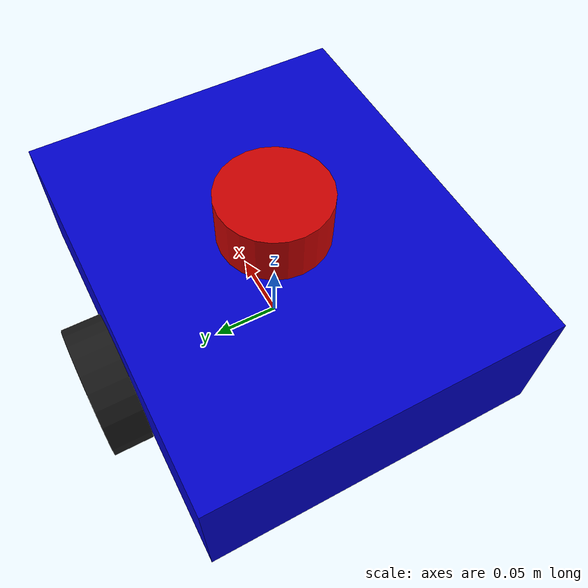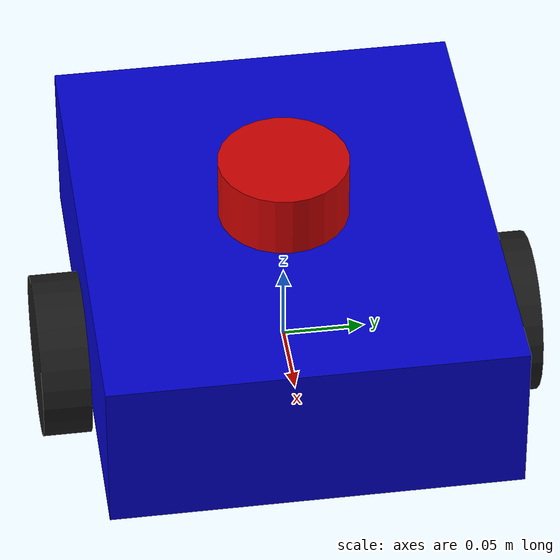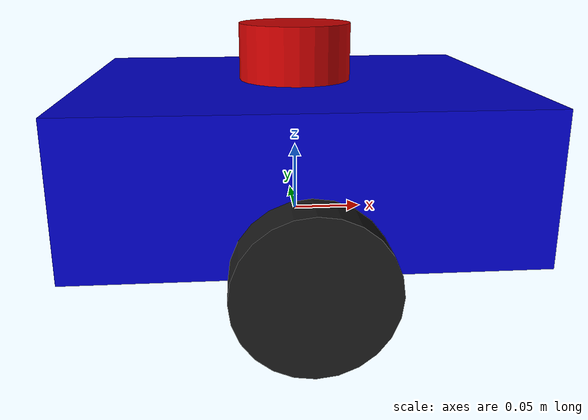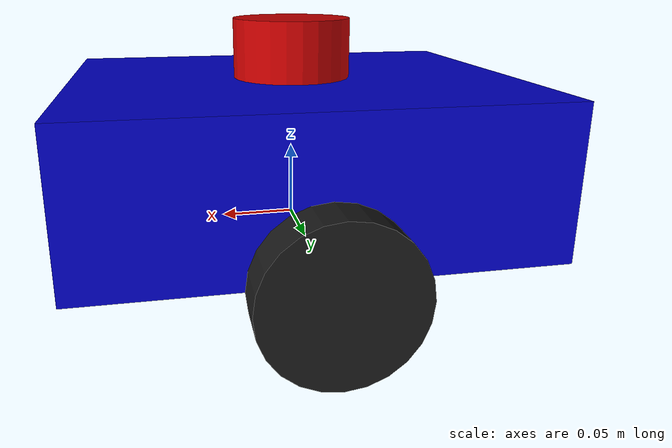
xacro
<?xml version="1.0"?>
<robot name="my_rover" xmlns:xacro="http://www.ros.org/wiki/xacro">

  <!-- ========== PROPERTIES (edit these to match your robot) ========== -->
  <xacro:property name="base_length" value="0.30"/>   <!-- meters -->
  <xacro:property name="base_width"  value="0.25"/>
  <xacro:property name="base_height" value="0.10"/>
  <xacro:property name="wheel_radius" value="0.05"/>
  <xacro:property name="wheel_width"  value="0.03"/>
  <xacro:property name="wheel_separation" value="0.28"/> <!-- left to right -->

  <!-- ========== BASE LINK ========== -->
  <link name="base_link">
    <visual>
      <geometry>
        <box size="${base_length} ${base_width} ${base_height}"/>
      </geometry>
      <material name="blue">
        <color rgba="0.0 0.0 0.8 1.0"/>
      </material>
    </visual>
    <collision>
      <geometry>
        <box size="${base_length} ${base_width} ${base_height}"/>
      </geometry>
    </collision>
    <inertial>
      <mass value="2.0"/>
      <inertia ixx="0.01" ixy="0" ixz="0"
               iyy="0.01" iyz="0" izz="0.02"/>
    </inertial>
  </link>

  <!-- ========== WHEEL MACRO ========== -->
  <xacro:macro name="wheel" params="name x_pos y_pos">

    <link name="${name}_wheel_link">
      <visual>
        <geometry>
          <cylinder radius="${wheel_radius}" length="${wheel_width}"/>
        </geometry>
        <material name="black">
          <color rgba="0.1 0.1 0.1 1.0"/>
        </material>
      </visual>
      <collision>
        <geometry>
          <cylinder radius="${wheel_radius}" length="${wheel_width}"/>
        </geometry>
      </collision>
      <inertial>
        <mass value="0.3"/>
        <inertia ixx="0.001" ixy="0" ixz="0"
                 iyy="0.001" iyz="0" izz="0.001"/>
      </inertial>
    </link>

    <!-- Continuous joint = spinning wheel -->
    <joint name="${name}_wheel_joint" type="continuous">
      <parent link="base_link"/>
      <child  link="${name}_wheel_link"/>
      <origin xyz="${x_pos} ${y_pos} ${-base_height/2}"
              rpy="${pi/2} 0 0"/>   <!-- rotate 90° so cylinder faces sideways -->
      <axis xyz="0 0 1"/>
    </joint>

    <!-- Encoder frame (used by ros2_control / wheel odometry) -->
    <link name="${name}_encoder_link"/>
    <joint name="${name}_encoder_joint" type="fixed">
      <parent link="${name}_wheel_link"/>
      <child  link="${name}_encoder_link"/>
      <origin xyz="0 0 0" rpy="0 0 0"/>
    </joint>

  </xacro:macro>

  <!-- Instantiate left & right wheels -->
  <xacro:wheel name="left"  x_pos="0" y_pos="${ wheel_separation/2}"/>
  <xacro:wheel name="right" x_pos="0" y_pos="${-wheel_separation/2}"/>

  <!-- ========== LIDAR LINK (RPLidar) ========== -->
  <link name="scan">
    <visual>
      <geometry>
        <cylinder radius="0.04" length="0.04"/>
      </geometry>
      <material name="red">
        <color rgba="0.8 0.0 0.0 1.0"/>
      </material>
    </visual>
    <collision>
      <geometry>
        <cylinder radius="0.04" length="0.04"/>
      </geometry>
    </collision>
    <inertial>
      <mass value="0.17"/>
      <inertia ixx="0.0001" ixy="0" ixz="0"
               iyy="0.0001" iyz="0" izz="0.0001"/>
    </inertial>
  </link>

  <joint name="lidar_joint" type="fixed">
    <parent link="base_link"/>
    <child  link="scan"/>
    <!-- Mount on top-center of base -->
    <origin xyz="0 0 ${base_height/2 + 0.02}" rpy="0 0 0"/>
  </joint>

  <!-- ========== BASE_FOOTPRINT (required by Nav2) ========== -->
  <link name="base_footprint"/>
  <joint name="base_footprint_joint" type="fixed">
    <parent link="base_footprint"/>
    <child  link="base_link"/>
    <origin xyz="0 0 ${wheel_radius}" rpy="0 0 0"/>
  </joint>

</robot>
